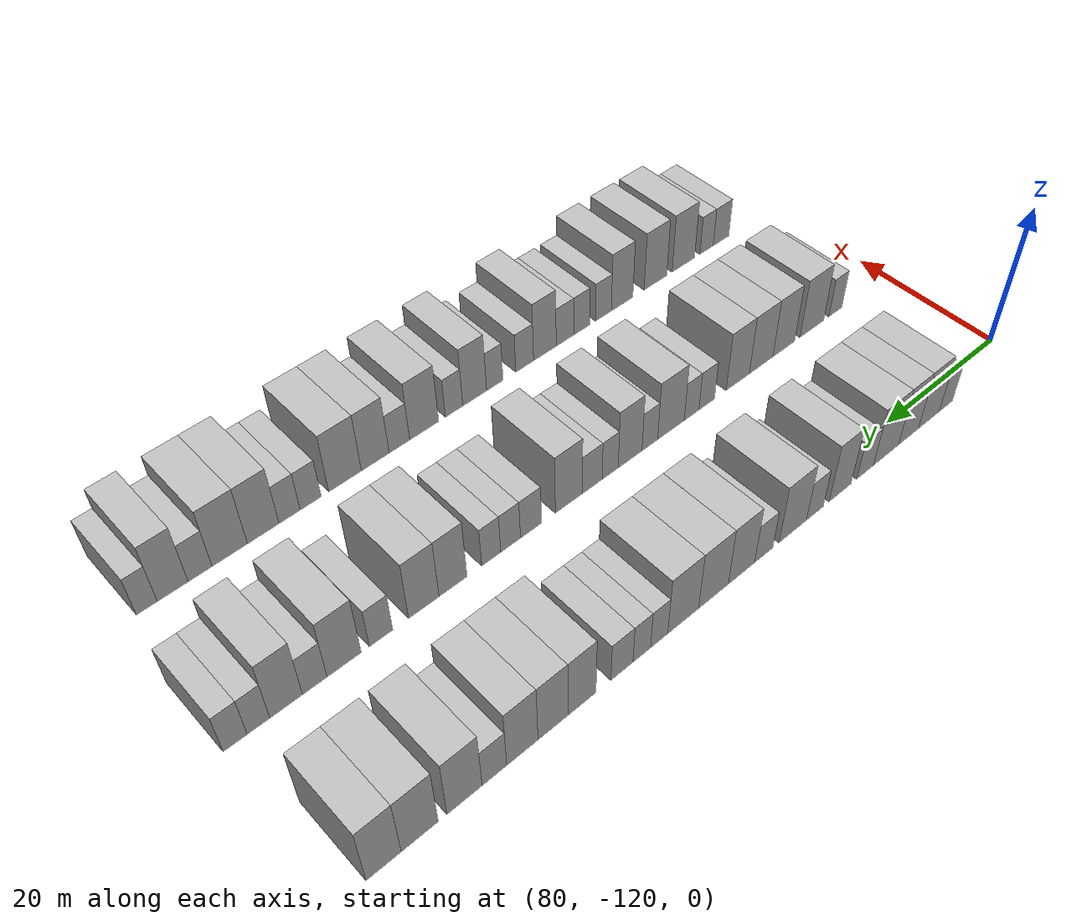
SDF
<sdf version="1.6">
 <world name="default">
  <model name="building_574">
   <static>1</static>
   <pose>82.0000 -106.9283 0 0.000000 0.000000 0.000000</pose>
   <link name="link">
    <pose>0 0 3.00 0 0 0</pose>
    <collision name="collision"><geometry><box><size>10.0000 2.5406 6.0000</size></box></geometry></collision>
    <visual name="visual">
     <cast_shadows>0</cast_shadows>
     <geometry><box><size>10.0000 2.5406 6.0000</size></box></geometry>
     <material>
      <script>
       <uri>model://HANNAS_wall/materials/scripts</uri>
       <uri>model://HANNAS_wall/materials/textures</uri>
       <name>vrc/HANNAS_wall</name>
      </script>
     </material>
    </visual>
   </link>
  </model>
  <model name="building_575">
   <static>1</static>
   <pose>82.0000 -103.7059 0 0.000000 0.000000 0.000000</pose>
   <link name="link">
    <pose>0 0 4.50 0 0 0</pose>
    <collision name="collision"><geometry><box><size>10.0000 3.9042 9.0000</size></box></geometry></collision>
    <visual name="visual">
     <cast_shadows>0</cast_shadows>
     <geometry><box><size>10.0000 3.9042 9.0000</size></box></geometry>
     <material>
      <script>
       <uri>model://HANNAS_wall/materials/scripts</uri>
       <uri>model://HANNAS_wall/materials/textures</uri>
       <name>vrc/HANNAS_wall</name>
      </script>
     </material>
    </visual>
   </link>
  </model>
  <model name="building_576">
   <static>1</static>
   <pose>82.0000 -99.9288 0 0.000000 0.000000 0.000000</pose>
   <link name="link">
    <pose>0 0 4.50 0 0 0</pose>
    <collision name="collision"><geometry><box><size>10.0000 3.6499 9.0000</size></box></geometry></collision>
    <visual name="visual">
     <cast_shadows>0</cast_shadows>
     <geometry><box><size>10.0000 3.6499 9.0000</size></box></geometry>
     <material>
      <script>
       <uri>model://HANNAS_wall/materials/scripts</uri>
       <uri>model://HANNAS_wall/materials/textures</uri>
       <name>vrc/HANNAS_wall</name>
      </script>
     </material>
    </visual>
   </link>
  </model>
  <model name="building_577">
   <static>1</static>
   <pose>82.0000 -95.8591 0 0.000000 0.000000 0.000000</pose>
   <link name="link">
    <pose>0 0 4.50 0 0 0</pose>
    <collision name="collision"><geometry><box><size>10.0000 4.4894 9.0000</size></box></geometry></collision>
    <visual name="visual">
     <cast_shadows>0</cast_shadows>
     <geometry><box><size>10.0000 4.4894 9.0000</size></box></geometry>
     <material>
      <script>
       <uri>model://HANNAS_wall/materials/scripts</uri>
       <uri>model://HANNAS_wall/materials/textures</uri>
       <name>vrc/HANNAS_wall</name>
      </script>
     </material>
    </visual>
   </link>
  </model>
  <model name="building_578">
   <static>1</static>
   <pose>82.0000 -92.1573 0 0.000000 0.000000 0.000000</pose>
   <link name="link">
    <pose>0 0 3.00 0 0 0</pose>
    <collision name="collision"><geometry><box><size>10.0000 2.9142 6.0000</size></box></geometry></collision>
    <visual name="visual">
     <cast_shadows>0</cast_shadows>
     <geometry><box><size>10.0000 2.9142 6.0000</size></box></geometry>
     <material>
      <script>
       <uri>model://HANNAS_wall/materials/scripts</uri>
       <uri>model://HANNAS_wall/materials/textures</uri>
       <name>vrc/HANNAS_wall</name>
      </script>
     </material>
    </visual>
   </link>
  </model>
  <model name="building_579">
   <static>1</static>
   <pose>82.0000 -87.8530 0 0.000000 0.000000 0.000000</pose>
   <link name="link">
    <pose>0 0 4.50 0 0 0</pose>
    <collision name="collision"><geometry><box><size>10.0000 3.6945 9.0000</size></box></geometry></collision>
    <visual name="visual">
     <cast_shadows>0</cast_shadows>
     <geometry><box><size>10.0000 3.6945 9.0000</size></box></geometry>
     <material>
      <script>
       <uri>model://HANNAS_wall/materials/scripts</uri>
       <uri>model://HANNAS_wall/materials/textures</uri>
       <name>vrc/HANNAS_wall</name>
      </script>
     </material>
    </visual>
   </link>
  </model>
  <model name="building_580">
   <static>1</static>
   <pose>82.0000 -83.6117 0 0.000000 0.000000 0.000000</pose>
   <link name="link">
    <pose>0 0 3.00 0 0 0</pose>
    <collision name="collision"><geometry><box><size>10.0000 2.7881 6.0000</size></box></geometry></collision>
    <visual name="visual">
     <cast_shadows>0</cast_shadows>
     <geometry><box><size>10.0000 2.7881 6.0000</size></box></geometry>
     <material>
      <script>
       <uri>model://HANNAS_wall/materials/scripts</uri>
       <uri>model://HANNAS_wall/materials/textures</uri>
       <name>vrc/HANNAS_wall</name>
      </script>
     </material>
    </visual>
   </link>
  </model>
  <model name="building_581">
   <static>1</static>
   <pose>82.0000 -80.0061 0 0.000000 0.000000 0.000000</pose>
   <link name="link">
    <pose>0 0 4.50 0 0 0</pose>
    <collision name="collision"><geometry><box><size>10.0000 4.4232 9.0000</size></box></geometry></collision>
    <visual name="visual">
     <cast_shadows>0</cast_shadows>
     <geometry><box><size>10.0000 4.4232 9.0000</size></box></geometry>
     <material>
      <script>
       <uri>model://HANNAS_wall/materials/scripts</uri>
       <uri>model://HANNAS_wall/materials/textures</uri>
       <name>vrc/HANNAS_wall</name>
      </script>
     </material>
    </visual>
   </link>
  </model>
  <model name="building_582">
   <static>1</static>
   <pose>82.0000 -75.3676 0 0.000000 0.000000 0.000000</pose>
   <link name="link">
    <pose>0 0 3.00 0 0 0</pose>
    <collision name="collision"><geometry><box><size>10.0000 2.8538 6.0000</size></box></geometry></collision>
    <visual name="visual">
     <cast_shadows>0</cast_shadows>
     <geometry><box><size>10.0000 2.8538 6.0000</size></box></geometry>
     <material>
      <script>
       <uri>model://HANNAS_wall/materials/scripts</uri>
       <uri>model://HANNAS_wall/materials/textures</uri>
       <name>vrc/HANNAS_wall</name>
      </script>
     </material>
    </visual>
   </link>
  </model>
  <model name="building_583">
   <static>1</static>
   <pose>82.0000 -71.9261 0 0.000000 0.000000 0.000000</pose>
   <link name="link">
    <pose>0 0 4.50 0 0 0</pose>
    <collision name="collision"><geometry><box><size>10.0000 4.0294 9.0000</size></box></geometry></collision>
    <visual name="visual">
     <cast_shadows>0</cast_shadows>
     <geometry><box><size>10.0000 4.0294 9.0000</size></box></geometry>
     <material>
      <script>
       <uri>model://HANNAS_wall/materials/scripts</uri>
       <uri>model://HANNAS_wall/materials/textures</uri>
       <name>vrc/HANNAS_wall</name>
      </script>
     </material>
    </visual>
   </link>
  </model>
  <model name="building_584">
   <static>1</static>
   <pose>82.0000 -67.6950 0 0.000000 0.000000 0.000000</pose>
   <link name="link">
    <pose>0 0 4.50 0 0 0</pose>
    <collision name="collision"><geometry><box><size>10.0000 4.4327 9.0000</size></box></geometry></collision>
    <visual name="visual">
     <cast_shadows>0</cast_shadows>
     <geometry><box><size>10.0000 4.4327 9.0000</size></box></geometry>
     <material>
      <script>
       <uri>model://HANNAS_wall/materials/scripts</uri>
       <uri>model://HANNAS_wall/materials/textures</uri>
       <name>vrc/HANNAS_wall</name>
      </script>
     </material>
    </visual>
   </link>
  </model>
  <model name="building_585">
   <static>1</static>
   <pose>82.0000 -63.2413 0 0.000000 0.000000 0.000000</pose>
   <link name="link">
    <pose>0 0 4.50 0 0 0</pose>
    <collision name="collision"><geometry><box><size>10.0000 4.4748 9.0000</size></box></geometry></collision>
    <visual name="visual">
     <cast_shadows>0</cast_shadows>
     <geometry><box><size>10.0000 4.4748 9.0000</size></box></geometry>
     <material>
      <script>
       <uri>model://HANNAS_wall/materials/scripts</uri>
       <uri>model://HANNAS_wall/materials/textures</uri>
       <name>vrc/HANNAS_wall</name>
      </script>
     </material>
    </visual>
   </link>
  </model>
  <model name="building_586">
   <static>1</static>
   <pose>82.0000 -59.7991 0 0.000000 0.000000 0.000000</pose>
   <link name="link">
    <pose>0 0 3.00 0 0 0</pose>
    <collision name="collision"><geometry><box><size>10.0000 2.4095 6.0000</size></box></geometry></collision>
    <visual name="visual">
     <cast_shadows>0</cast_shadows>
     <geometry><box><size>10.0000 2.4095 6.0000</size></box></geometry>
     <material>
      <script>
       <uri>model://HANNAS_wall/materials/scripts</uri>
       <uri>model://HANNAS_wall/materials/textures</uri>
       <name>vrc/HANNAS_wall</name>
      </script>
     </material>
    </visual>
   </link>
  </model>
  <model name="building_587">
   <static>1</static>
   <pose>82.0000 -57.3724 0 0.000000 0.000000 0.000000</pose>
   <link name="link">
    <pose>0 0 3.00 0 0 0</pose>
    <collision name="collision"><geometry><box><size>10.0000 2.4440 6.0000</size></box></geometry></collision>
    <visual name="visual">
     <cast_shadows>0</cast_shadows>
     <geometry><box><size>10.0000 2.4440 6.0000</size></box></geometry>
     <material>
      <script>
       <uri>model://HANNAS_wall/materials/scripts</uri>
       <uri>model://HANNAS_wall/materials/textures</uri>
       <name>vrc/HANNAS_wall</name>
      </script>
     </material>
    </visual>
   </link>
  </model>
  <model name="building_588">
   <static>1</static>
   <pose>82.0000 -54.6553 0 0.000000 0.000000 0.000000</pose>
   <link name="link">
    <pose>0 0 3.00 0 0 0</pose>
    <collision name="collision"><geometry><box><size>10.0000 2.9901 6.0000</size></box></geometry></collision>
    <visual name="visual">
     <cast_shadows>0</cast_shadows>
     <geometry><box><size>10.0000 2.9901 6.0000</size></box></geometry>
     <material>
      <script>
       <uri>model://HANNAS_wall/materials/scripts</uri>
       <uri>model://HANNAS_wall/materials/textures</uri>
       <name>vrc/HANNAS_wall</name>
      </script>
     </material>
    </visual>
   </link>
  </model>
  <model name="building_589">
   <static>1</static>
   <pose>82.0000 -49.3370 0 0.000000 0.000000 0.000000</pose>
   <link name="link">
    <pose>0 0 4.50 0 0 0</pose>
    <collision name="collision"><geometry><box><size>10.0000 3.6465 9.0000</size></box></geometry></collision>
    <visual name="visual">
     <cast_shadows>0</cast_shadows>
     <geometry><box><size>10.0000 3.6465 9.0000</size></box></geometry>
     <material>
      <script>
       <uri>model://HANNAS_wall/materials/scripts</uri>
       <uri>model://HANNAS_wall/materials/textures</uri>
       <name>vrc/HANNAS_wall</name>
      </script>
     </material>
    </visual>
   </link>
  </model>
  <model name="building_590">
   <static>1</static>
   <pose>82.0000 -45.5978 0 0.000000 0.000000 0.000000</pose>
   <link name="link">
    <pose>0 0 4.50 0 0 0</pose>
    <collision name="collision"><geometry><box><size>10.0000 3.8319 9.0000</size></box></geometry></collision>
    <visual name="visual">
     <cast_shadows>0</cast_shadows>
     <geometry><box><size>10.0000 3.8319 9.0000</size></box></geometry>
     <material>
      <script>
       <uri>model://HANNAS_wall/materials/scripts</uri>
       <uri>model://HANNAS_wall/materials/textures</uri>
       <name>vrc/HANNAS_wall</name>
      </script>
     </material>
    </visual>
   </link>
  </model>
  <model name="building_591">
   <static>1</static>
   <pose>82.0000 -41.7468 0 0.000000 0.000000 0.000000</pose>
   <link name="link">
    <pose>0 0 4.50 0 0 0</pose>
    <collision name="collision"><geometry><box><size>10.0000 3.8700 9.0000</size></box></geometry></collision>
    <visual name="visual">
     <cast_shadows>0</cast_shadows>
     <geometry><box><size>10.0000 3.8700 9.0000</size></box></geometry>
     <material>
      <script>
       <uri>model://HANNAS_wall/materials/scripts</uri>
       <uri>model://HANNAS_wall/materials/textures</uri>
       <name>vrc/HANNAS_wall</name>
      </script>
     </material>
    </visual>
   </link>
  </model>
  <model name="building_592">
   <static>1</static>
   <pose>82.0000 -38.3289 0 0.000000 0.000000 0.000000</pose>
   <link name="link">
    <pose>0 0 3.00 0 0 0</pose>
    <collision name="collision"><geometry><box><size>10.0000 2.9658 6.0000</size></box></geometry></collision>
    <visual name="visual">
     <cast_shadows>0</cast_shadows>
     <geometry><box><size>10.0000 2.9658 6.0000</size></box></geometry>
     <material>
      <script>
       <uri>model://HANNAS_wall/materials/scripts</uri>
       <uri>model://HANNAS_wall/materials/textures</uri>
       <name>vrc/HANNAS_wall</name>
      </script>
     </material>
    </visual>
   </link>
  </model>
  <model name="building_593">
   <static>1</static>
   <pose>82.0000 -34.7792 0 0.000000 0.000000 0.000000</pose>
   <link name="link">
    <pose>0 0 4.50 0 0 0</pose>
    <collision name="collision"><geometry><box><size>10.0000 4.1336 9.0000</size></box></geometry></collision>
    <visual name="visual">
     <cast_shadows>0</cast_shadows>
     <geometry><box><size>10.0000 4.1336 9.0000</size></box></geometry>
     <material>
      <script>
       <uri>model://HANNAS_wall/materials/scripts</uri>
       <uri>model://HANNAS_wall/materials/textures</uri>
       <name>vrc/HANNAS_wall</name>
      </script>
     </material>
    </visual>
   </link>
  </model>
  <model name="building_594">
   <static>1</static>
   <pose>82.0000 -29.6258 0 0.000000 0.000000 0.000000</pose>
   <link name="link">
    <pose>0 0 4.50 0 0 0</pose>
    <collision name="collision"><geometry><box><size>10.0000 4.1731 9.0000</size></box></geometry></collision>
    <visual name="visual">
     <cast_shadows>0</cast_shadows>
     <geometry><box><size>10.0000 4.1731 9.0000</size></box></geometry>
     <material>
      <script>
       <uri>model://HANNAS_wall/materials/scripts</uri>
       <uri>model://HANNAS_wall/materials/textures</uri>
       <name>vrc/HANNAS_wall</name>
      </script>
     </material>
    </visual>
   </link>
  </model>
  <model name="building_595">
   <static>1</static>
   <pose>82.0000 -25.6099 0 0.000000 0.000000 0.000000</pose>
   <link name="link">
    <pose>0 0 4.50 0 0 0</pose>
    <collision name="collision"><geometry><box><size>10.0000 3.8588 9.0000</size></box></geometry></collision>
    <visual name="visual">
     <cast_shadows>0</cast_shadows>
     <geometry><box><size>10.0000 3.8588 9.0000</size></box></geometry>
     <material>
      <script>
       <uri>model://HANNAS_wall/materials/scripts</uri>
       <uri>model://HANNAS_wall/materials/textures</uri>
       <name>vrc/HANNAS_wall</name>
      </script>
     </material>
    </visual>
   </link>
  </model>
  <model name="building_748">
   <static>1</static>
   <pose>101.0000 -110.0393 0 0.000000 0.000000 0.000000</pose>
   <link name="link">
    <pose>0 0 3.00 0 0 0</pose>
    <collision name="collision"><geometry><box><size>10.0000 2.4861 6.0000</size></box></geometry></collision>
    <visual name="visual">
     <cast_shadows>0</cast_shadows>
     <geometry><box><size>10.0000 2.4861 6.0000</size></box></geometry>
     <material>
      <script>
       <uri>model://HANNAS_wall/materials/scripts</uri>
       <uri>model://HANNAS_wall/materials/textures</uri>
       <name>vrc/HANNAS_wall</name>
      </script>
     </material>
    </visual>
   </link>
  </model>
  <model name="building_749">
   <static>1</static>
   <pose>101.0000 -105.5755 0 0.000000 0.000000 0.000000</pose>
   <link name="link">
    <pose>0 0 4.50 0 0 0</pose>
    <collision name="collision"><geometry><box><size>10.0000 4.4415 9.0000</size></box></geometry></collision>
    <visual name="visual">
     <cast_shadows>0</cast_shadows>
     <geometry><box><size>10.0000 4.4415 9.0000</size></box></geometry>
     <material>
      <script>
       <uri>model://HANNAS_wall/materials/scripts</uri>
       <uri>model://HANNAS_wall/materials/textures</uri>
       <name>vrc/HANNAS_wall</name>
      </script>
     </material>
    </visual>
   </link>
  </model>
  <model name="building_750">
   <static>1</static>
   <pose>101.0000 -100.3648 0 0.000000 0.000000 0.000000</pose>
   <link name="link">
    <pose>0 0 4.50 0 0 0</pose>
    <collision name="collision"><geometry><box><size>10.0000 3.9797 9.0000</size></box></geometry></collision>
    <visual name="visual">
     <cast_shadows>0</cast_shadows>
     <geometry><box><size>10.0000 3.9797 9.0000</size></box></geometry>
     <material>
      <script>
       <uri>model://HANNAS_wall/materials/scripts</uri>
       <uri>model://HANNAS_wall/materials/textures</uri>
       <name>vrc/HANNAS_wall</name>
      </script>
     </material>
    </visual>
   </link>
  </model>
  <model name="building_751">
   <static>1</static>
   <pose>101.0000 -96.2801 0 0.000000 0.000000 0.000000</pose>
   <link name="link">
    <pose>0 0 4.50 0 0 0</pose>
    <collision name="collision"><geometry><box><size>10.0000 4.1897 9.0000</size></box></geometry></collision>
    <visual name="visual">
     <cast_shadows>0</cast_shadows>
     <geometry><box><size>10.0000 4.1897 9.0000</size></box></geometry>
     <material>
      <script>
       <uri>model://HANNAS_wall/materials/scripts</uri>
       <uri>model://HANNAS_wall/materials/textures</uri>
       <name>vrc/HANNAS_wall</name>
      </script>
     </material>
    </visual>
   </link>
  </model>
  <model name="building_752">
   <static>1</static>
   <pose>101.0000 -92.1665 0 0.000000 0.000000 0.000000</pose>
   <link name="link">
    <pose>0 0 4.50 0 0 0</pose>
    <collision name="collision"><geometry><box><size>10.0000 4.0377 9.0000</size></box></geometry></collision>
    <visual name="visual">
     <cast_shadows>0</cast_shadows>
     <geometry><box><size>10.0000 4.0377 9.0000</size></box></geometry>
     <material>
      <script>
       <uri>model://HANNAS_wall/materials/scripts</uri>
       <uri>model://HANNAS_wall/materials/textures</uri>
       <name>vrc/HANNAS_wall</name>
      </script>
     </material>
    </visual>
   </link>
  </model>
  <model name="building_753">
   <static>1</static>
   <pose>101.0000 -86.8346 0 0.000000 0.000000 0.000000</pose>
   <link name="link">
    <pose>0 0 3.00 0 0 0</pose>
    <collision name="collision"><geometry><box><size>10.0000 2.6260 6.0000</size></box></geometry></collision>
    <visual name="visual">
     <cast_shadows>0</cast_shadows>
     <geometry><box><size>10.0000 2.6260 6.0000</size></box></geometry>
     <material>
      <script>
       <uri>model://HANNAS_wall/materials/scripts</uri>
       <uri>model://HANNAS_wall/materials/textures</uri>
       <name>vrc/HANNAS_wall</name>
      </script>
     </material>
    </visual>
   </link>
  </model>
  <model name="building_754">
   <static>1</static>
   <pose>101.0000 -84.2998 0 0.000000 0.000000 0.000000</pose>
   <link name="link">
    <pose>0 0 3.00 0 0 0</pose>
    <collision name="collision"><geometry><box><size>10.0000 2.4434 6.0000</size></box></geometry></collision>
    <visual name="visual">
     <cast_shadows>0</cast_shadows>
     <geometry><box><size>10.0000 2.4434 6.0000</size></box></geometry>
     <material>
      <script>
       <uri>model://HANNAS_wall/materials/scripts</uri>
       <uri>model://HANNAS_wall/materials/textures</uri>
       <name>vrc/HANNAS_wall</name>
      </script>
     </material>
    </visual>
   </link>
  </model>
  <model name="building_755">
   <static>1</static>
   <pose>101.0000 -80.9184 0 0.000000 0.000000 0.000000</pose>
   <link name="link">
    <pose>0 0 4.50 0 0 0</pose>
    <collision name="collision"><geometry><box><size>10.0000 4.3195 9.0000</size></box></geometry></collision>
    <visual name="visual">
     <cast_shadows>0</cast_shadows>
     <geometry><box><size>10.0000 4.3195 9.0000</size></box></geometry>
     <material>
      <script>
       <uri>model://HANNAS_wall/materials/scripts</uri>
       <uri>model://HANNAS_wall/materials/textures</uri>
       <name>vrc/HANNAS_wall</name>
      </script>
     </material>
    </visual>
   </link>
  </model>
  <model name="building_756">
   <static>1</static>
   <pose>101.0000 -77.5113 0 0.000000 0.000000 0.000000</pose>
   <link name="link">
    <pose>0 0 3.00 0 0 0</pose>
    <collision name="collision"><geometry><box><size>10.0000 2.4947 6.0000</size></box></geometry></collision>
    <visual name="visual">
     <cast_shadows>0</cast_shadows>
     <geometry><box><size>10.0000 2.4947 6.0000</size></box></geometry>
     <material>
      <script>
       <uri>model://HANNAS_wall/materials/scripts</uri>
       <uri>model://HANNAS_wall/materials/textures</uri>
       <name>vrc/HANNAS_wall</name>
      </script>
     </material>
    </visual>
   </link>
  </model>
  <model name="building_757">
   <static>1</static>
   <pose>101.0000 -74.4019 0 0.000000 0.000000 0.000000</pose>
   <link name="link">
    <pose>0 0 4.50 0 0 0</pose>
    <collision name="collision"><geometry><box><size>10.0000 3.7242 9.0000</size></box></geometry></collision>
    <visual name="visual">
     <cast_shadows>0</cast_shadows>
     <geometry><box><size>10.0000 3.7242 9.0000</size></box></geometry>
     <material>
      <script>
       <uri>model://HANNAS_wall/materials/scripts</uri>
       <uri>model://HANNAS_wall/materials/textures</uri>
       <name>vrc/HANNAS_wall</name>
      </script>
     </material>
    </visual>
   </link>
  </model>
  <model name="building_758">
   <static>1</static>
   <pose>101.0000 -71.3175 0 0.000000 0.000000 0.000000</pose>
   <link name="link">
    <pose>0 0 3.00 0 0 0</pose>
    <collision name="collision"><geometry><box><size>10.0000 2.4446 6.0000</size></box></geometry></collision>
    <visual name="visual">
     <cast_shadows>0</cast_shadows>
     <geometry><box><size>10.0000 2.4446 6.0000</size></box></geometry>
     <material>
      <script>
       <uri>model://HANNAS_wall/materials/scripts</uri>
       <uri>model://HANNAS_wall/materials/textures</uri>
       <name>vrc/HANNAS_wall</name>
      </script>
     </material>
    </visual>
   </link>
  </model>
  <model name="building_759">
   <static>1</static>
   <pose>101.0000 -68.6049 0 0.000000 0.000000 0.000000</pose>
   <link name="link">
    <pose>0 0 3.00 0 0 0</pose>
    <collision name="collision"><geometry><box><size>10.0000 2.9805 6.0000</size></box></geometry></collision>
    <visual name="visual">
     <cast_shadows>0</cast_shadows>
     <geometry><box><size>10.0000 2.9805 6.0000</size></box></geometry>
     <material>
      <script>
       <uri>model://HANNAS_wall/materials/scripts</uri>
       <uri>model://HANNAS_wall/materials/textures</uri>
       <name>vrc/HANNAS_wall</name>
      </script>
     </material>
    </visual>
   </link>
  </model>
  <model name="building_760">
   <static>1</static>
   <pose>101.0000 -65.1283 0 0.000000 0.000000 0.000000</pose>
   <link name="link">
    <pose>0 0 4.50 0 0 0</pose>
    <collision name="collision"><geometry><box><size>10.0000 3.9728 9.0000</size></box></geometry></collision>
    <visual name="visual">
     <cast_shadows>0</cast_shadows>
     <geometry><box><size>10.0000 3.9728 9.0000</size></box></geometry>
     <material>
      <script>
       <uri>model://HANNAS_wall/materials/scripts</uri>
       <uri>model://HANNAS_wall/materials/textures</uri>
       <name>vrc/HANNAS_wall</name>
      </script>
     </material>
    </visual>
   </link>
  </model>
  <model name="building_761">
   <static>1</static>
   <pose>101.0000 -59.6487 0 0.000000 0.000000 0.000000</pose>
   <link name="link">
    <pose>0 0 3.00 0 0 0</pose>
    <collision name="collision"><geometry><box><size>10.0000 2.9864 6.0000</size></box></geometry></collision>
    <visual name="visual">
     <cast_shadows>0</cast_shadows>
     <geometry><box><size>10.0000 2.9864 6.0000</size></box></geometry>
     <material>
      <script>
       <uri>model://HANNAS_wall/materials/scripts</uri>
       <uri>model://HANNAS_wall/materials/textures</uri>
       <name>vrc/HANNAS_wall</name>
      </script>
     </material>
    </visual>
   </link>
  </model>
  <model name="building_762">
   <static>1</static>
   <pose>101.0000 -56.7765 0 0.000000 0.000000 0.000000</pose>
   <link name="link">
    <pose>0 0 3.00 0 0 0</pose>
    <collision name="collision"><geometry><box><size>10.0000 2.7580 6.0000</size></box></geometry></collision>
    <visual name="visual">
     <cast_shadows>0</cast_shadows>
     <geometry><box><size>10.0000 2.7580 6.0000</size></box></geometry>
     <material>
      <script>
       <uri>model://HANNAS_wall/materials/scripts</uri>
       <uri>model://HANNAS_wall/materials/textures</uri>
       <name>vrc/HANNAS_wall</name>
      </script>
     </material>
    </visual>
   </link>
  </model>
  <model name="building_763">
   <static>1</static>
   <pose>101.0000 -54.0975 0 0.000000 0.000000 0.000000</pose>
   <link name="link">
    <pose>0 0 3.00 0 0 0</pose>
    <collision name="collision"><geometry><box><size>10.0000 2.6001 6.0000</size></box></geometry></collision>
    <visual name="visual">
     <cast_shadows>0</cast_shadows>
     <geometry><box><size>10.0000 2.6001 6.0000</size></box></geometry>
     <material>
      <script>
       <uri>model://HANNAS_wall/materials/scripts</uri>
       <uri>model://HANNAS_wall/materials/textures</uri>
       <name>vrc/HANNAS_wall</name>
      </script>
     </material>
    </visual>
   </link>
  </model>
  <model name="building_764">
   <static>1</static>
   <pose>101.0000 -48.9473 0 0.000000 0.000000 0.000000</pose>
   <link name="link">
    <pose>0 0 4.50 0 0 0</pose>
    <collision name="collision"><geometry><box><size>10.0000 3.7001 9.0000</size></box></geometry></collision>
    <visual name="visual">
     <cast_shadows>0</cast_shadows>
     <geometry><box><size>10.0000 3.7001 9.0000</size></box></geometry>
     <material>
      <script>
       <uri>model://HANNAS_wall/materials/scripts</uri>
       <uri>model://HANNAS_wall/materials/textures</uri>
       <name>vrc/HANNAS_wall</name>
      </script>
     </material>
    </visual>
   </link>
  </model>
  <model name="building_765">
   <static>1</static>
   <pose>101.0000 -45.1322 0 0.000000 0.000000 0.000000</pose>
   <link name="link">
    <pose>0 0 4.50 0 0 0</pose>
    <collision name="collision"><geometry><box><size>10.0000 3.9301 9.0000</size></box></geometry></collision>
    <visual name="visual">
     <cast_shadows>0</cast_shadows>
     <geometry><box><size>10.0000 3.9301 9.0000</size></box></geometry>
     <material>
      <script>
       <uri>model://HANNAS_wall/materials/scripts</uri>
       <uri>model://HANNAS_wall/materials/textures</uri>
       <name>vrc/HANNAS_wall</name>
      </script>
     </material>
    </visual>
   </link>
  </model>
  <model name="building_766">
   <static>1</static>
   <pose>101.0000 -39.7158 0 0.000000 0.000000 0.000000</pose>
   <link name="link">
    <pose>0 0 3.00 0 0 0</pose>
    <collision name="collision"><geometry><box><size>10.0000 2.9026 6.0000</size></box></geometry></collision>
    <visual name="visual">
     <cast_shadows>0</cast_shadows>
     <geometry><box><size>10.0000 2.9026 6.0000</size></box></geometry>
     <material>
      <script>
       <uri>model://HANNAS_wall/materials/scripts</uri>
       <uri>model://HANNAS_wall/materials/textures</uri>
       <name>vrc/HANNAS_wall</name>
      </script>
     </material>
    </visual>
   </link>
  </model>
  <model name="building_767">
   <static>1</static>
   <pose>101.0000 -35.2101 0 0.000000 0.000000 0.000000</pose>
   <link name="link">
    <pose>0 0 4.50 0 0 0</pose>
    <collision name="collision"><geometry><box><size>10.0000 4.1088 9.0000</size></box></geometry></collision>
    <visual name="visual">
     <cast_shadows>0</cast_shadows>
     <geometry><box><size>10.0000 4.1088 9.0000</size></box></geometry>
     <material>
      <script>
       <uri>model://HANNAS_wall/materials/scripts</uri>
       <uri>model://HANNAS_wall/materials/textures</uri>
       <name>vrc/HANNAS_wall</name>
      </script>
     </material>
    </visual>
   </link>
  </model>
  <model name="building_768">
   <static>1</static>
   <pose>101.0000 -31.7201 0 0.000000 0.000000 0.000000</pose>
   <link name="link">
    <pose>0 0 3.00 0 0 0</pose>
    <collision name="collision"><geometry><box><size>10.0000 2.8714 6.0000</size></box></geometry></collision>
    <visual name="visual">
     <cast_shadows>0</cast_shadows>
     <geometry><box><size>10.0000 2.8714 6.0000</size></box></geometry>
     <material>
      <script>
       <uri>model://HANNAS_wall/materials/scripts</uri>
       <uri>model://HANNAS_wall/materials/textures</uri>
       <name>vrc/HANNAS_wall</name>
      </script>
     </material>
    </visual>
   </link>
  </model>
  <model name="building_769">
   <static>1</static>
   <pose>101.0000 -28.4059 0 0.000000 0.000000 0.000000</pose>
   <link name="link">
    <pose>0 0 4.50 0 0 0</pose>
    <collision name="collision"><geometry><box><size>10.0000 3.7571 9.0000</size></box></geometry></collision>
    <visual name="visual">
     <cast_shadows>0</cast_shadows>
     <geometry><box><size>10.0000 3.7571 9.0000</size></box></geometry>
     <material>
      <script>
       <uri>model://HANNAS_wall/materials/scripts</uri>
       <uri>model://HANNAS_wall/materials/textures</uri>
       <name>vrc/HANNAS_wall</name>
      </script>
     </material>
    </visual>
   </link>
  </model>
  <model name="building_770">
   <static>1</static>
   <pose>101.0000 -25.2556 0 0.000000 0.000000 0.000000</pose>
   <link name="link">
    <pose>0 0 3.00 0 0 0</pose>
    <collision name="collision"><geometry><box><size>10.0000 2.5434 6.0000</size></box></geometry></collision>
    <visual name="visual">
     <cast_shadows>0</cast_shadows>
     <geometry><box><size>10.0000 2.5434 6.0000</size></box></geometry>
     <material>
      <script>
       <uri>model://HANNAS_wall/materials/scripts</uri>
       <uri>model://HANNAS_wall/materials/textures</uri>
       <name>vrc/HANNAS_wall</name>
      </script>
     </material>
    </visual>
   </link>
  </model>
  <model name="building_771">
   <static>1</static>
   <pose>101.0000 -22.6611 0 0.000000 0.000000 0.000000</pose>
   <link name="link">
    <pose>0 0 3.00 0 0 0</pose>
    <collision name="collision"><geometry><box><size>10.0000 2.6455 6.0000</size></box></geometry></collision>
    <visual name="visual">
     <cast_shadows>0</cast_shadows>
     <geometry><box><size>10.0000 2.6455 6.0000</size></box></geometry>
     <material>
      <script>
       <uri>model://HANNAS_wall/materials/scripts</uri>
       <uri>model://HANNAS_wall/materials/textures</uri>
       <name>vrc/HANNAS_wall</name>
      </script>
     </material>
    </visual>
   </link>
  </model>
  <model name="building_921">
   <static>1</static>
   <pose>120.0000 -109.7127 0 0.000000 0.000000 0.000000</pose>
   <link name="link">
    <pose>0 0 3.00 0 0 0</pose>
    <collision name="collision"><geometry><box><size>10.0000 2.9762 6.0000</size></box></geometry></collision>
    <visual name="visual">
     <cast_shadows>0</cast_shadows>
     <geometry><box><size>10.0000 2.9762 6.0000</size></box></geometry>
     <material>
      <script>
       <uri>model://HANNAS_wall/materials/scripts</uri>
       <uri>model://HANNAS_wall/materials/textures</uri>
       <name>vrc/HANNAS_wall</name>
      </script>
     </material>
    </visual>
   </link>
  </model>
  <model name="building_922">
   <static>1</static>
   <pose>120.0000 -106.9709 0 0.000000 0.000000 0.000000</pose>
   <link name="link">
    <pose>0 0 3.00 0 0 0</pose>
    <collision name="collision"><geometry><box><size>10.0000 2.5075 6.0000</size></box></geometry></collision>
    <visual name="visual">
     <cast_shadows>0</cast_shadows>
     <geometry><box><size>10.0000 2.5075 6.0000</size></box></geometry>
     <material>
      <script>
       <uri>model://HANNAS_wall/materials/scripts</uri>
       <uri>model://HANNAS_wall/materials/textures</uri>
       <name>vrc/HANNAS_wall</name>
      </script>
     </material>
    </visual>
   </link>
  </model>
  <model name="building_923">
   <static>1</static>
   <pose>120.0000 -102.6442 0 0.000000 0.000000 0.000000</pose>
   <link name="link">
    <pose>0 0 4.50 0 0 0</pose>
    <collision name="collision"><geometry><box><size>10.0000 4.1459 9.0000</size></box></geometry></collision>
    <visual name="visual">
     <cast_shadows>0</cast_shadows>
     <geometry><box><size>10.0000 4.1459 9.0000</size></box></geometry>
     <material>
      <script>
       <uri>model://HANNAS_wall/materials/scripts</uri>
       <uri>model://HANNAS_wall/materials/textures</uri>
       <name>vrc/HANNAS_wall</name>
      </script>
     </material>
    </visual>
   </link>
  </model>
  <model name="building_924">
   <static>1</static>
   <pose>120.0000 -97.5481 0 0.000000 0.000000 0.000000</pose>
   <link name="link">
    <pose>0 0 4.50 0 0 0</pose>
    <collision name="collision"><geometry><box><size>10.0000 4.0463 9.0000</size></box></geometry></collision>
    <visual name="visual">
     <cast_shadows>0</cast_shadows>
     <geometry><box><size>10.0000 4.0463 9.0000</size></box></geometry>
     <material>
      <script>
       <uri>model://HANNAS_wall/materials/scripts</uri>
       <uri>model://HANNAS_wall/materials/textures</uri>
       <name>vrc/HANNAS_wall</name>
      </script>
     </material>
    </visual>
   </link>
  </model>
  <model name="building_925">
   <static>1</static>
   <pose>120.0000 -91.6541 0 0.000000 0.000000 0.000000</pose>
   <link name="link">
    <pose>0 0 4.50 0 0 0</pose>
    <collision name="collision"><geometry><box><size>10.0000 3.7418 9.0000</size></box></geometry></collision>
    <visual name="visual">
     <cast_shadows>0</cast_shadows>
     <geometry><box><size>10.0000 3.7418 9.0000</size></box></geometry>
     <material>
      <script>
       <uri>model://HANNAS_wall/materials/scripts</uri>
       <uri>model://HANNAS_wall/materials/textures</uri>
       <name>vrc/HANNAS_wall</name>
      </script>
     </material>
    </visual>
   </link>
  </model>
  <model name="building_926">
   <static>1</static>
   <pose>120.0000 -88.4304 0 0.000000 0.000000 0.000000</pose>
   <link name="link">
    <pose>0 0 3.00 0 0 0</pose>
    <collision name="collision"><geometry><box><size>10.0000 2.7055 6.0000</size></box></geometry></collision>
    <visual name="visual">
     <cast_shadows>0</cast_shadows>
     <geometry><box><size>10.0000 2.7055 6.0000</size></box></geometry>
     <material>
      <script>
       <uri>model://HANNAS_wall/materials/scripts</uri>
       <uri>model://HANNAS_wall/materials/textures</uri>
       <name>vrc/HANNAS_wall</name>
      </script>
     </material>
    </visual>
   </link>
  </model>
  <model name="building_927">
   <static>1</static>
   <pose>120.0000 -84.7426 0 0.000000 0.000000 0.000000</pose>
   <link name="link">
    <pose>0 0 3.00 0 0 0</pose>
    <collision name="collision"><geometry><box><size>10.0000 2.6701 6.0000</size></box></geometry></collision>
    <visual name="visual">
     <cast_shadows>0</cast_shadows>
     <geometry><box><size>10.0000 2.6701 6.0000</size></box></geometry>
     <material>
      <script>
       <uri>model://HANNAS_wall/materials/scripts</uri>
       <uri>model://HANNAS_wall/materials/textures</uri>
       <name>vrc/HANNAS_wall</name>
      </script>
     </material>
    </visual>
   </link>
  </model>
  <model name="building_928">
   <static>1</static>
   <pose>120.0000 -81.9767 0 0.000000 0.000000 0.000000</pose>
   <link name="link">
    <pose>0 0 3.00 0 0 0</pose>
    <collision name="collision"><geometry><box><size>10.0000 2.8618 6.0000</size></box></geometry></collision>
    <visual name="visual">
     <cast_shadows>0</cast_shadows>
     <geometry><box><size>10.0000 2.8618 6.0000</size></box></geometry>
     <material>
      <script>
       <uri>model://HANNAS_wall/materials/scripts</uri>
       <uri>model://HANNAS_wall/materials/textures</uri>
       <name>vrc/HANNAS_wall</name>
      </script>
     </material>
    </visual>
   </link>
  </model>
  <model name="building_929">
   <static>1</static>
   <pose>120.0000 -78.7161 0 0.000000 0.000000 0.000000</pose>
   <link name="link">
    <pose>0 0 4.50 0 0 0</pose>
    <collision name="collision"><geometry><box><size>10.0000 3.6594 9.0000</size></box></geometry></collision>
    <visual name="visual">
     <cast_shadows>0</cast_shadows>
     <geometry><box><size>10.0000 3.6594 9.0000</size></box></geometry>
     <material>
      <script>
       <uri>model://HANNAS_wall/materials/scripts</uri>
       <uri>model://HANNAS_wall/materials/textures</uri>
       <name>vrc/HANNAS_wall</name>
      </script>
     </material>
    </visual>
   </link>
  </model>
  <model name="building_930">
   <static>1</static>
   <pose>120.0000 -75.4750 0 0.000000 0.000000 0.000000</pose>
   <link name="link">
    <pose>0 0 3.00 0 0 0</pose>
    <collision name="collision"><geometry><box><size>10.0000 2.8229 6.0000</size></box></geometry></collision>
    <visual name="visual">
     <cast_shadows>0</cast_shadows>
     <geometry><box><size>10.0000 2.8229 6.0000</size></box></geometry>
     <material>
      <script>
       <uri>model://HANNAS_wall/materials/scripts</uri>
       <uri>model://HANNAS_wall/materials/textures</uri>
       <name>vrc/HANNAS_wall</name>
      </script>
     </material>
    </visual>
   </link>
  </model>
  <model name="building_931">
   <static>1</static>
   <pose>120.0000 -70.8002 0 0.000000 0.000000 0.000000</pose>
   <link name="link">
    <pose>0 0 3.00 0 0 0</pose>
    <collision name="collision"><geometry><box><size>10.0000 2.5267 6.0000</size></box></geometry></collision>
    <visual name="visual">
     <cast_shadows>0</cast_shadows>
     <geometry><box><size>10.0000 2.5267 6.0000</size></box></geometry>
     <material>
      <script>
       <uri>model://HANNAS_wall/materials/scripts</uri>
       <uri>model://HANNAS_wall/materials/textures</uri>
       <name>vrc/HANNAS_wall</name>
      </script>
     </material>
    </visual>
   </link>
  </model>
  <model name="building_932">
   <static>1</static>
   <pose>120.0000 -67.7336 0 0.000000 0.000000 0.000000</pose>
   <link name="link">
    <pose>0 0 4.50 0 0 0</pose>
    <collision name="collision"><geometry><box><size>10.0000 3.6064 9.0000</size></box></geometry></collision>
    <visual name="visual">
     <cast_shadows>0</cast_shadows>
     <geometry><box><size>10.0000 3.6064 9.0000</size></box></geometry>
     <material>
      <script>
       <uri>model://HANNAS_wall/materials/scripts</uri>
       <uri>model://HANNAS_wall/materials/textures</uri>
       <name>vrc/HANNAS_wall</name>
      </script>
     </material>
    </visual>
   </link>
  </model>
  <model name="building_933">
   <static>1</static>
   <pose>120.0000 -64.6371 0 0.000000 0.000000 0.000000</pose>
   <link name="link">
    <pose>0 0 3.00 0 0 0</pose>
    <collision name="collision"><geometry><box><size>10.0000 2.5866 6.0000</size></box></geometry></collision>
    <visual name="visual">
     <cast_shadows>0</cast_shadows>
     <geometry><box><size>10.0000 2.5866 6.0000</size></box></geometry>
     <material>
      <script>
       <uri>model://HANNAS_wall/materials/scripts</uri>
       <uri>model://HANNAS_wall/materials/textures</uri>
       <name>vrc/HANNAS_wall</name>
      </script>
     </material>
    </visual>
   </link>
  </model>
  <model name="building_934">
   <static>1</static>
   <pose>120.0000 -60.2500 0 0.000000 0.000000 0.000000</pose>
   <link name="link">
    <pose>0 0 4.50 0 0 0</pose>
    <collision name="collision"><geometry><box><size>10.0000 4.1876 9.0000</size></box></geometry></collision>
    <visual name="visual">
     <cast_shadows>0</cast_shadows>
     <geometry><box><size>10.0000 4.1876 9.0000</size></box></geometry>
     <material>
      <script>
       <uri>model://HANNAS_wall/materials/scripts</uri>
       <uri>model://HANNAS_wall/materials/textures</uri>
       <name>vrc/HANNAS_wall</name>
      </script>
     </material>
    </visual>
   </link>
  </model>
  <model name="building_935">
   <static>1</static>
   <pose>120.0000 -56.6970 0 0.000000 0.000000 0.000000</pose>
   <link name="link">
    <pose>0 0 3.00 0 0 0</pose>
    <collision name="collision"><geometry><box><size>10.0000 2.9185 6.0000</size></box></geometry></collision>
    <visual name="visual">
     <cast_shadows>0</cast_shadows>
     <geometry><box><size>10.0000 2.9185 6.0000</size></box></geometry>
     <material>
      <script>
       <uri>model://HANNAS_wall/materials/scripts</uri>
       <uri>model://HANNAS_wall/materials/textures</uri>
       <name>vrc/HANNAS_wall</name>
      </script>
     </material>
    </visual>
   </link>
  </model>
  <model name="building_936">
   <static>1</static>
   <pose>120.0000 -53.3129 0 0.000000 0.000000 0.000000</pose>
   <link name="link">
    <pose>0 0 4.50 0 0 0</pose>
    <collision name="collision"><geometry><box><size>10.0000 3.8498 9.0000</size></box></geometry></collision>
    <visual name="visual">
     <cast_shadows>0</cast_shadows>
     <geometry><box><size>10.0000 3.8498 9.0000</size></box></geometry>
     <material>
      <script>
       <uri>model://HANNAS_wall/materials/scripts</uri>
       <uri>model://HANNAS_wall/materials/textures</uri>
       <name>vrc/HANNAS_wall</name>
      </script>
     </material>
    </visual>
   </link>
  </model>
  <model name="building_937">
   <static>1</static>
   <pose>120.0000 -49.1794 0 0.000000 0.000000 0.000000</pose>
   <link name="link">
    <pose>0 0 4.50 0 0 0</pose>
    <collision name="collision"><geometry><box><size>10.0000 4.4172 9.0000</size></box></geometry></collision>
    <visual name="visual">
     <cast_shadows>0</cast_shadows>
     <geometry><box><size>10.0000 4.4172 9.0000</size></box></geometry>
     <material>
      <script>
       <uri>model://HANNAS_wall/materials/scripts</uri>
       <uri>model://HANNAS_wall/materials/textures</uri>
       <name>vrc/HANNAS_wall</name>
      </script>
     </material>
    </visual>
   </link>
  </model>
  <model name="building_938">
   <static>1</static>
   <pose>120.0000 -44.5972 0 0.000000 0.000000 0.000000</pose>
   <link name="link">
    <pose>0 0 3.00 0 0 0</pose>
    <collision name="collision"><geometry><box><size>10.0000 2.7472 6.0000</size></box></geometry></collision>
    <visual name="visual">
     <cast_shadows>0</cast_shadows>
     <geometry><box><size>10.0000 2.7472 6.0000</size></box></geometry>
     <material>
      <script>
       <uri>model://HANNAS_wall/materials/scripts</uri>
       <uri>model://HANNAS_wall/materials/textures</uri>
       <name>vrc/HANNAS_wall</name>
      </script>
     </material>
    </visual>
   </link>
  </model>
  <model name="building_939">
   <static>1</static>
   <pose>120.0000 -41.8556 0 0.000000 0.000000 0.000000</pose>
   <link name="link">
    <pose>0 0 3.00 0 0 0</pose>
    <collision name="collision"><geometry><box><size>10.0000 2.7358 6.0000</size></box></geometry></collision>
    <visual name="visual">
     <cast_shadows>0</cast_shadows>
     <geometry><box><size>10.0000 2.7358 6.0000</size></box></geometry>
     <material>
      <script>
       <uri>model://HANNAS_wall/materials/scripts</uri>
       <uri>model://HANNAS_wall/materials/textures</uri>
       <name>vrc/HANNAS_wall</name>
      </script>
     </material>
    </visual>
   </link>
  </model>
  <model name="building_940">
   <static>1</static>
   <pose>120.0000 -38.4943 0 0.000000 0.000000 0.000000</pose>
   <link name="link">
    <pose>0 0 4.50 0 0 0</pose>
    <collision name="collision"><geometry><box><size>10.0000 3.9868 9.0000</size></box></geometry></collision>
    <visual name="visual">
     <cast_shadows>0</cast_shadows>
     <geometry><box><size>10.0000 3.9868 9.0000</size></box></geometry>
     <material>
      <script>
       <uri>model://HANNAS_wall/materials/scripts</uri>
       <uri>model://HANNAS_wall/materials/textures</uri>
       <name>vrc/HANNAS_wall</name>
      </script>
     </material>
    </visual>
   </link>
  </model>
  <model name="building_941">
   <static>1</static>
   <pose>120.0000 -34.3271 0 0.000000 0.000000 0.000000</pose>
   <link name="link">
    <pose>0 0 4.50 0 0 0</pose>
    <collision name="collision"><geometry><box><size>10.0000 4.3477 9.0000</size></box></geometry></collision>
    <visual name="visual">
     <cast_shadows>0</cast_shadows>
     <geometry><box><size>10.0000 4.3477 9.0000</size></box></geometry>
     <material>
      <script>
       <uri>model://HANNAS_wall/materials/scripts</uri>
       <uri>model://HANNAS_wall/materials/textures</uri>
       <name>vrc/HANNAS_wall</name>
      </script>
     </material>
    </visual>
   </link>
  </model>
  <model name="building_942">
   <static>1</static>
   <pose>120.0000 -30.7206 0 0.000000 0.000000 0.000000</pose>
   <link name="link">
    <pose>0 0 3.00 0 0 0</pose>
    <collision name="collision"><geometry><box><size>10.0000 2.8654 6.0000</size></box></geometry></collision>
    <visual name="visual">
     <cast_shadows>0</cast_shadows>
     <geometry><box><size>10.0000 2.8654 6.0000</size></box></geometry>
     <material>
      <script>
       <uri>model://HANNAS_wall/materials/scripts</uri>
       <uri>model://HANNAS_wall/materials/textures</uri>
       <name>vrc/HANNAS_wall</name>
      </script>
     </material>
    </visual>
   </link>
  </model>
  <model name="building_943">
   <static>1</static>
   <pose>120.0000 -27.4791 0 0.000000 0.000000 0.000000</pose>
   <link name="link">
    <pose>0 0 4.50 0 0 0</pose>
    <collision name="collision"><geometry><box><size>10.0000 3.6176 9.0000</size></box></geometry></collision>
    <visual name="visual">
     <cast_shadows>0</cast_shadows>
     <geometry><box><size>10.0000 3.6176 9.0000</size></box></geometry>
     <material>
      <script>
       <uri>model://HANNAS_wall/materials/scripts</uri>
       <uri>model://HANNAS_wall/materials/textures</uri>
       <name>vrc/HANNAS_wall</name>
      </script>
     </material>
    </visual>
   </link>
  </model>
  <model name="building_944">
   <static>1</static>
   <pose>120.0000 -24.4647 0 0.000000 0.000000 0.000000</pose>
   <link name="link">
    <pose>0 0 3.00 0 0 0</pose>
    <collision name="collision"><geometry><box><size>10.0000 2.4111 6.0000</size></box></geometry></collision>
    <visual name="visual">
     <cast_shadows>0</cast_shadows>
     <geometry><box><size>10.0000 2.4111 6.0000</size></box></geometry>
     <material>
      <script>
       <uri>model://HANNAS_wall/materials/scripts</uri>
       <uri>model://HANNAS_wall/materials/textures</uri>
       <name>vrc/HANNAS_wall</name>
      </script>
     </material>
    </visual>
   </link>
  </model>
 </world>
</sdf>
